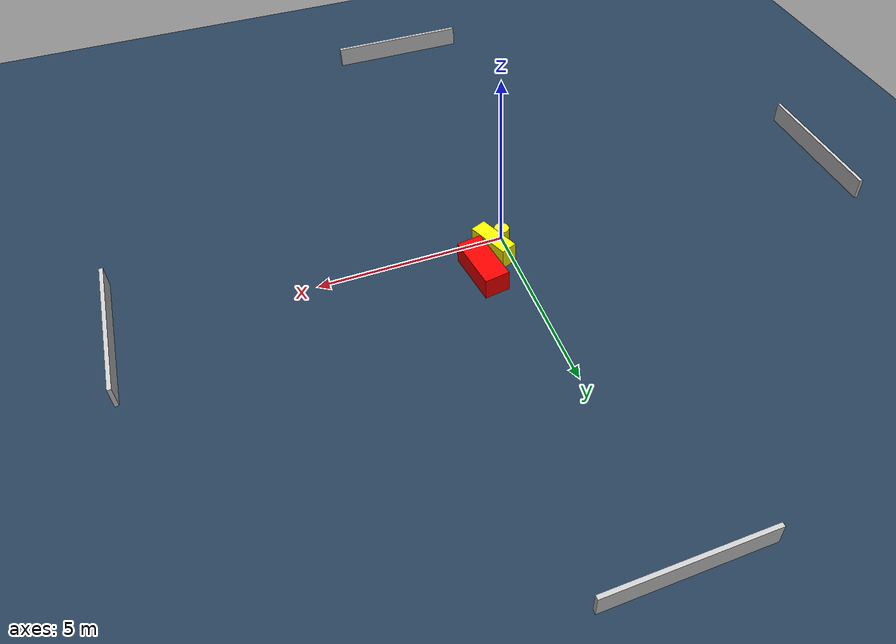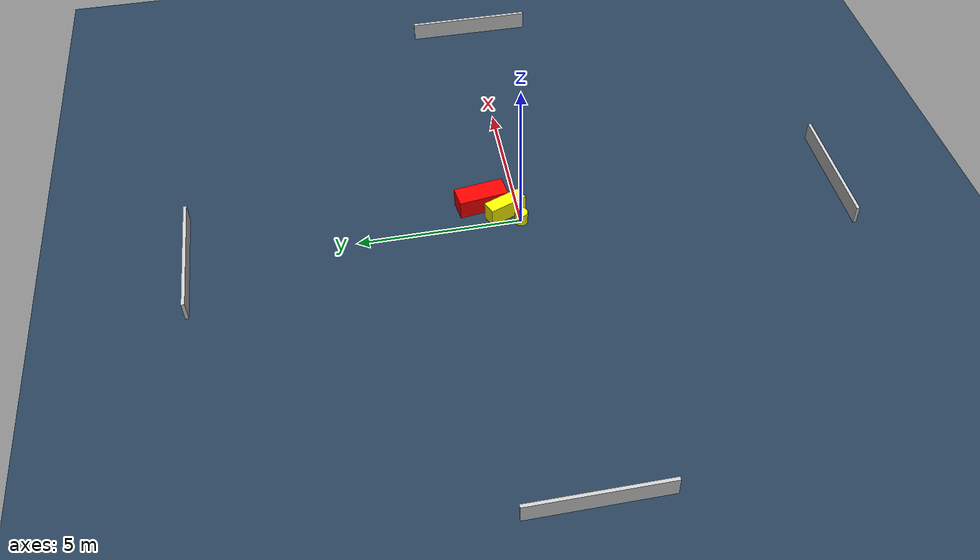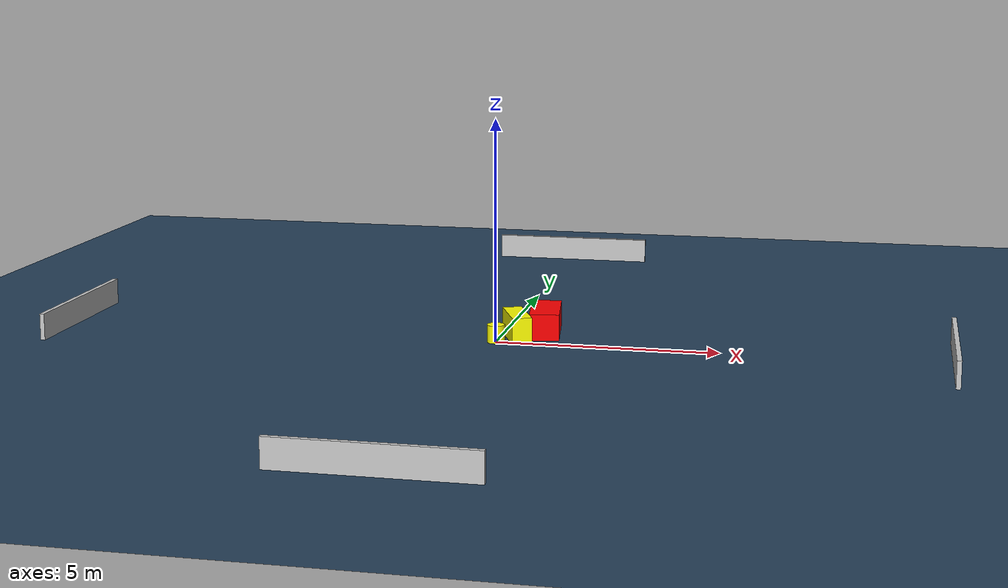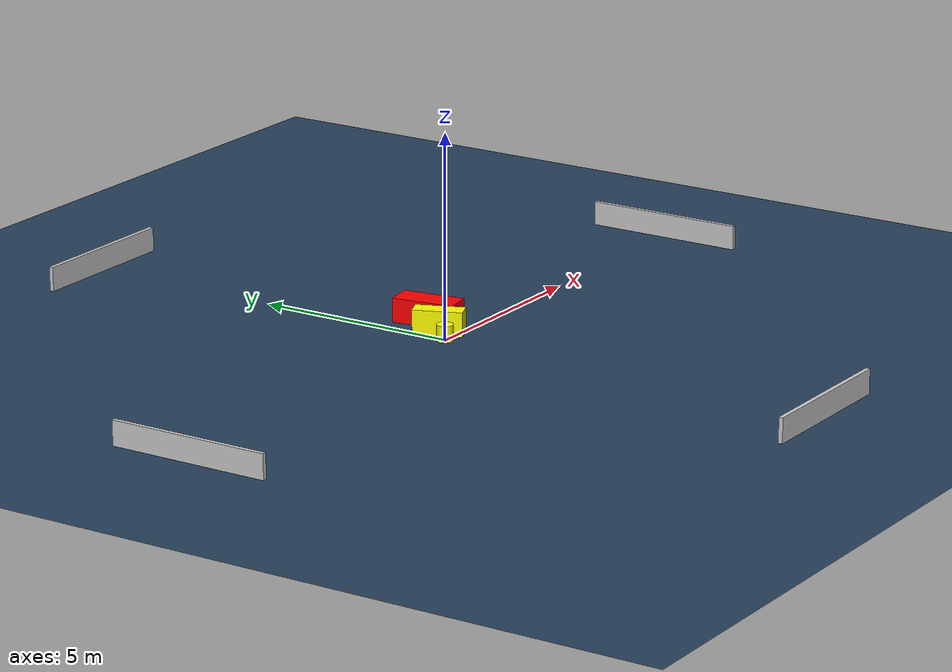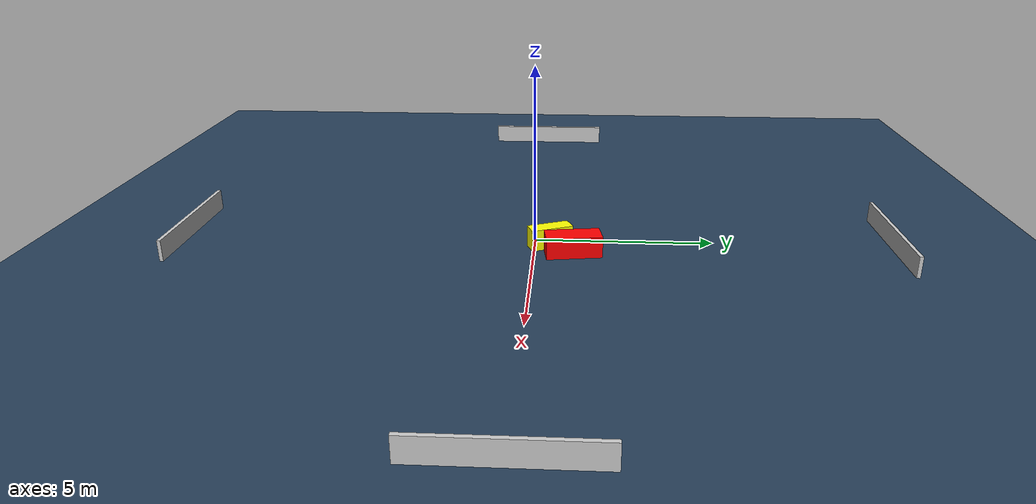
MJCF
<?xml version="1.0" ?>
<mujoco model="generated_environment">
  <option timestep="0.01" integrator="RK4" cone="elliptic"/>
  <default>
    <geom density="1"/>
  </default>
  <asset>
    <texture builtin="gradient" height="3072" name="skybox" rgb1="0.3 0.5 0.7" rgb2="0 0 0" type="skybox" width="512"/>
    <texture builtin="checker" height="300" name="groundplane" rgb1="0.2 0.3 0.4" rgb2="0.1 0.2 0.3" type="2d" width="300"/>
    <material name="groundplane" reflectance="0.2" texrepeat="5 5" texture="groundplane"/>
  </asset>
  <worldbody>
    <light dir="0 0 -1" directional="true" pos="0 0 1.5"/>
    <geom condim="3" friction="0.5 0.005 0.001" material="groundplane" name="floor" pos="0 0 0" size="0 0 0.05" type="plane"/>
    <body name="walls">
      <geom name="wall_1" condim="4" pos="-10.0 0.0 0.3" rgba="0.800000011920929 0.800000011920929 0.800000011920929 1.0" size="0.05 2.0 0.3" type="box"/>
      <geom name="wall_2" condim="4" pos="10.0 0.0 0.3" rgba="0.800000011920929 0.800000011920929 0.800000011920929 1.0" size="0.05 2.0 0.3" type="box"/>
      <geom name="wall_3" condim="4" pos="0.0 -10.0 0.3" rgba="0.800000011920929 0.800000011920929 0.800000011920929 1.0" size="2.0 0.05 0.3" type="box"/>
      <geom name="wall_4" condim="4" pos="0.0 10.0 0.3" rgba="0.800000011920929 0.800000011920929 0.800000011920929 1.0" size="2.0 0.05 0.3" type="box"/>
    </body>
    <body name="robot">
      <joint name="joint_x" type="slide" pos="0 0 0" axis="1 0 0"/>
      <joint name="joint_y" type="slide" pos="0 0 0" axis="0 1 0"/>
      <geom name="robot" type="cylinder" pos="0.0 0.0 0.2" size="0.2 0.2 0.0" mass="5.0" friction="1.0 0.005 0.0001" condim="4" rgba="1.0 1.0 0.0 1.0"/>
    </body>
    <body name="obstacle_1_movable">
      <geom name="obstacle_1_movable" condim="4" pos="0.39480799249524956 0.42710304948427275 0.3" euler="0 0 292.420199066019" friction="0.0 0.005 0.001" rgba="1.0 1.0 0.0 1.0" size="0.6001523663367527 0.2213306795422811 0.3" type="box" mass="0.1"/>
      <joint type="free"/>
    </body>
    <body name="obstacle_2_static">
      <geom name="obstacle_2_static" condim="4" pos="0.9256918767484594 1.0785129574893484 0.3" euler="0 0 98.28807547750247" friction="0.0 0.005 0.001" rgba="1.0 0.0 0.0 1.0" size="0.7695437737774296 0.3364498466719913 0.3" type="box"/>
    </body>
  </worldbody>
  <actuator>
    <motor name="actuator_x" joint="joint_x" gear="1" ctrlrange="-1 1"/>
    <motor name="actuator_y" joint="joint_y" gear="1" ctrlrange="-1 1"/>
  </actuator>
</mujoco>
